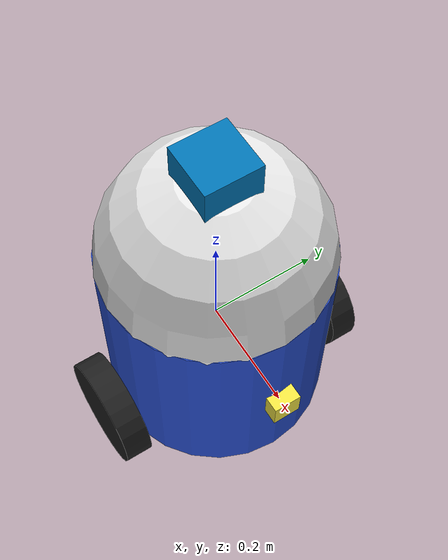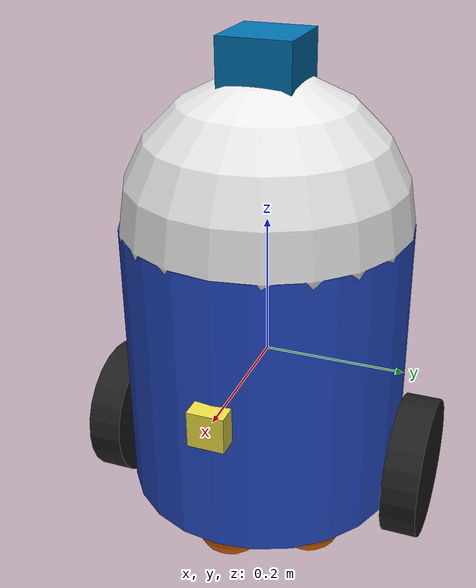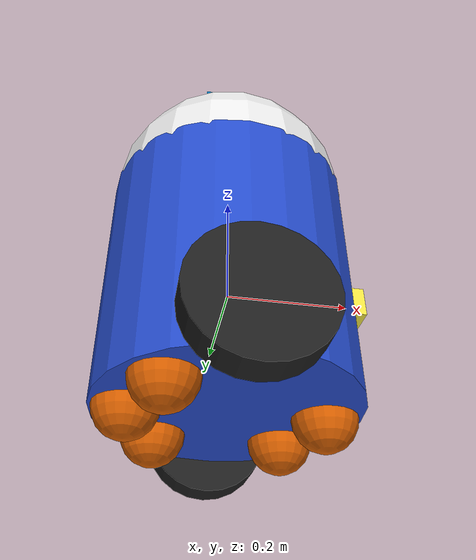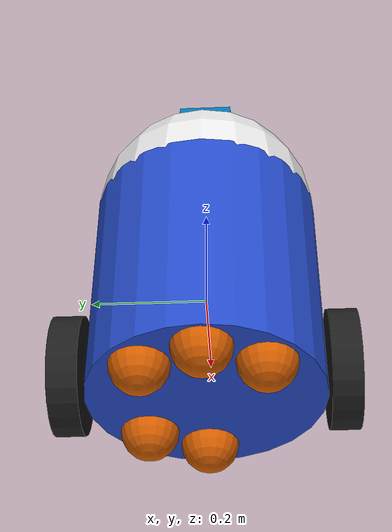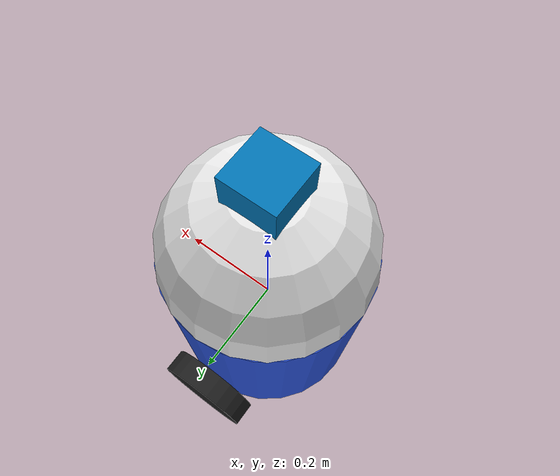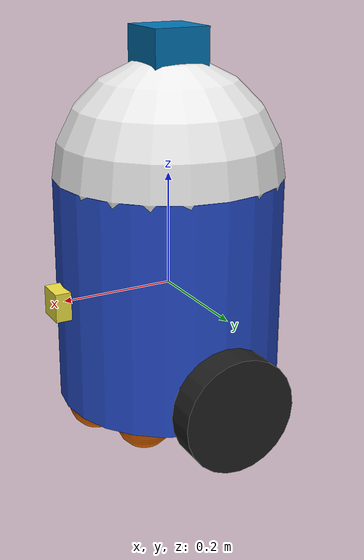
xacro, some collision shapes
<?xml version='1.0'?>

<robot name="udacity_bot" xmlns:xacro="http://www.ros.org/wiki/xacro">
    <xacro:include filename="$(find udacity_bot)/urdf/udacity_bot.gazebo" />
    <link name="robot_footprint"></link>

    <joint name="robot_footprint_joint" type="fixed">
        <origin xyz="0 0 0" rpy="0 0 0"/>
        <parent link="robot_footprint"/>
        <child link="chassis"/>
    </joint>

    <link name='left_wheel'>
        <inertial>
            <mass value="3.0"/>
            <origin xyz="0.0 0 0" rpy=" 0 1.5707 1.5707"/>
            <inertia ixx="0.1" ixy="0" ixz="0" iyy="0.1" iyz="0" izz="0.1"/>
        </inertial>

        <collision name='collision'>
            <origin xyz="0.0 0 0" rpy=" 0 1.5707 1.5707"/>
            <geometry>
                <cylinder length="0.049" radius="0.1"/>
            </geometry>
        </collision>

        <visual name='wheel_visual'>
            <origin xyz="0.0 0 0" rpy=" 0 1.5707 1.5707"/>
            <geometry>
                <cylinder length="0.05" radius="0.1"/>
            </geometry>
			      <material name="black"/>
        </visual>
    </link>

    <joint type="continuous" name="left_wheel_hinge">
        <origin xyz="0.0 0.225 -0.15" rpy="0 0 0"/>
        <child link="left_wheel"/>
        <parent link="chassis"/>
        <axis xyz="0 1 0" rpy="0 0 0"/>
        <limit effort="25000" velocity="250"/>
        <joint_properties damping="1.0" friction="1.0"/>
    </joint>

    <link name='right_wheel'>
        <inertial>
            <mass value="3.0"/>
            <origin xyz="0.0 0 0" rpy=" 0 1.5707 1.5707"/>
            <inertia ixx="0.1" ixy="0" ixz="0" iyy="0.1" iyz="0" izz="0.1"/>
        </inertial>

        <collision name='collision'>
            <origin xyz="0.0 0 0" rpy=" 0 1.5707 1.5707"/>
            <geometry>
                <cylinder length="0.049" radius="0.1"/>
            </geometry>
        </collision>

        <visual name='wheel_visual'>
            <origin xyz="0.0 0 0" rpy=" 0 1.5707 1.5707"/>
            <geometry>
                <cylinder length="0.05" radius="0.1"/>
            </geometry>
			      <material name="black"/>
        </visual>
    </link>

    <joint type="continuous" name="right_wheel_hinge">
        <origin xyz="0.0 -0.225 -0.15" rpy="0 0 0"/>
        <child link="right_wheel"/>
        <parent link="chassis"/>
        <axis xyz="0 1 0" rpy="0 0 0"/>
        <limit effort="25000" velocity="250"/>
        <joint_properties damping="1.0" friction="1.0"/>
    </joint>

    <link name='camera'>
        <inertial>
            <mass value="0.1"/>
            <origin xyz="0.0 0 0" rpy=" 0 0 0"/>
            <inertia ixx="1e-6" ixy="0" ixz="0" iyy="1e-6" iyz="0" izz="1e-6"/>
        </inertial>

        <collision name='collision'>
            <origin xyz="0.0 0 0" rpy=" 0 0 0"/>
            <geometry>
                <box size="0.05 0.05 0.05"/>
            </geometry>
        </collision>

        <visual name='camera_visual'>
            <origin xyz="0.0 0 0" rpy=" 0 0 0"/>
            <geometry>
                <box size="0.05 0.05 0.05"/>
            </geometry>
        </visual>
    </link>
    <joint type="fixed" name="camera_joint">
        <origin xyz="0.2 0 0" rpy="0 0 0"/>
        <child link="camera"/>
        <parent link="chassis"/>
    </joint>

    <link name='hokuyo'>
        <inertial>
            <mass value="0.1"/>
            <origin xyz="0.0 0 0" rpy=" 0 0 0"/>
            <inertia ixx="1e-6" ixy="0" ixz="0" iyy="1e-6" iyz="0" izz="1e-6"/>
        </inertial>

        <collision name='collision'>
            <origin xyz="0.0 0 0" rpy=" 0 0 0"/>
            <geometry>
                <box size="0.1 0.1 0.1"/>
            </geometry>
        </collision>

        <visual name='hokuyo_visual'>
            <origin xyz="0.0 0 0" rpy=" 0 0 0"/>
            <geometry>
                <mesh filename="package://udacity_bot/meshes/hokuyo.dae"/>
            </geometry>
        </visual>
    </link>
    <joint type="fixed" name="hokuyo_joint">
        <origin xyz="0.0 0.0 0.2" rpy="0 0 0"/>
        <child link="hokuyo"/>
        <parent link="head"/>
    </joint>

    <link name='chassis'>
        <pose>0 0 0.1 0 0 0</pose>

        <collision name='collision'>
          <origin xyz="0.0 0 0.0" rpy="0 0 0"/>
          <geometry>
              <cylinder length="0.3" radius="0.2"/>
          </geometry>
        </collision>

        <visual name='chassis_visual'>
          <origin xyz="0.0 0 0" rpy=" 0 0 0"/>
          <geometry>
              <cylinder length="0.4" radius="0.2"/>
          </geometry>
			      <material name="blue"/>
        </visual>

        <visual name='back_caster_visual'>
            <origin xyz="-0.145 0 -0.2" rpy=" 0 0 0"/>
            <geometry>
                <sphere radius="0.05"/>
                <material name="green"/>
            </geometry>
        </visual>

        <collision name='back_caster_collision'>
            <origin xyz="-0.145 0 -0.2" rpy=" 0 0 0"/>
            <geometry>
                <sphere radius="0.0499"/>
            </geometry>
            <surface>
                <friction>
                    <ode>
                        <mu>0</mu>
                        <mu2>0</mu2>
                        <slip1>1.0</slip1>
                        <slip2>1.0</slip2>
                    </ode>
                </friction>
            </surface>
        </collision>

        <visual name='back_left_caster_visual'>
            <origin xyz="-0.1 -0.1 -0.2" rpy=" 0 0 0"/>
            <geometry>
                <sphere radius="0.05"/>
            </geometry>
        </visual>

        <collision name='back_left_caster_collision'>
            <origin xyz="-0.1 -0.1 -0.2" rpy=" 0 0 0"/>
            <geometry>
                <sphere radius="0.0499"/>
				        <material name="green"/>
            </geometry>
            <surface>
                <friction>
                    <ode>
                        <mu>0</mu>
                        <mu2>0</mu2>
                        <slip1>1.0</slip1>
                        <slip2>1.0</slip2>
                    </ode>
                </friction>
            </surface>
        </collision>

        <visual name='back_right_caster_visual'>
            <origin xyz="-0.1 0.1 -0.2" rpy=" 0 0 0"/>
            <geometry>
                <sphere radius="0.05"/>
            </geometry>
        </visual>

        <collision name='back_right_caster_collision'>
            <origin xyz="-0.1 0.1 -0.2" rpy=" 0 0 0"/>
            <geometry>
                <sphere radius="0.0499"/>
            </geometry>
            <surface>
                <friction>
                    <ode>
                        <mu>0</mu>
                        <mu2>0</mu2>
                        <slip1>1.0</slip1>
                        <slip2>1.0</slip2>
                    </ode>
                </friction>
            </surface>
        </collision>

        <collision name='front_caster_collision'>
            <origin xyz="0.145 0 -0.2" rpy=" 0 0 0"/>
            <geometry>
                <sphere radius="0.0499"/>
            </geometry>
            <surface>
                <friction>
                    <ode>
                        <mu>0</mu>
                        <mu2>0</mu2>
                        <slip1>1.0</slip1>
                        <slip2>1.0</slip2>
                    </ode>
                </friction>
            </surface>
        </collision>

        <visual name='front_caster_visual'>
            <origin xyz="0.145 0 -0.2" rpy=" 0 0 0"/>
            <geometry>
                <sphere radius="0.05"/>
				        <material name="green"/>
            </geometry>
        </visual>

        <visual name='front_right_caster_visual'>
            <origin xyz="0.1 0.1 -0.2" rpy=" 0 0 0"/>
            <geometry>
                <sphere radius="0.05"/>
            </geometry>
        </visual>

        <collision name='front_right_caster_collision'>
            <origin xyz="0.1 0.1 -0.2" rpy=" 0 0 0"/>
            <geometry>
                <sphere radius="0.0499"/>
            </geometry>
            <surface>
                <friction>
                    <ode>
                        <mu>0</mu>
                        <mu2>0</mu2>
                        <slip1>1.0</slip1>
                        <slip2>1.0</slip2>
                    </ode>
                </friction>
            </surface>
        </collision>

        <visual name='front_left_caster_visual'>
            <origin xyz="-0.1 -0.1 -0.2" rpy=" 0 0 0"/>
            <geometry>
                <sphere radius="0.05"/>
            </geometry>
        </visual>

        <collision name='front_left_caster_collision'>
            <origin xyz="0.1 -0.1 -0.2" rpy=" 0 0 0"/>
            <geometry>
                <sphere radius="0.0499"/>
            </geometry>
            <surface>
                <friction>
                    <ode>
                        <mu>0</mu>
                        <mu2>0</mu2>
                        <slip1>1.0</slip1>
                        <slip2>1.0</slip2>
                    </ode>
                </friction>
            </surface>
        </collision>

    </link>

    <link name='head'>
      <visual>
        <geometry>
          <sphere radius='0.2'/>
        </geometry>
        <material name='white'/>
      </visual>
    </link>
    <joint name='head_joint' type='fixed'>
      <parent link='chassis'/>
      <child link='head'/>
      <origin xyz='0 0 0.2'/>
    </joint>

    <link name='ballast'>

      <inertial>
          <mass value="5.0"/>
          <origin xyz="0 0 0" rpy="0 0 0"/>
          <inertia ixx="0.1" ixy="0" ixz="0" iyy="0.1" iyz="0" izz="0.1"/>
      </inertial>

      <visual>
        <geometry>
          <box size='0.01 0.01 0.1'/>
        </geometry>
        <material name='white'/>
      </visual>
    </link>
    <joint name='ballast_joint' type='fixed'>
      <parent link='chassis'/>
      <child link='ballast'/>
      <origin xyz='0 0 0.05'/>
    </joint>

</robot>
